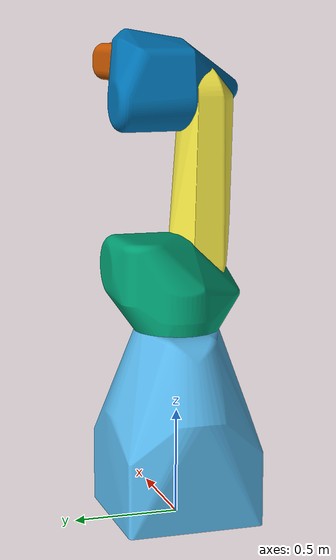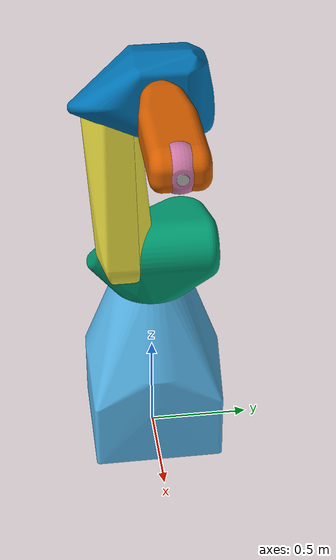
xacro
<?xml version="1.0"?>
<robot xmlns:xacro="http://www.ros.org/wiki/xacro" name="cr_35ia">
  <xacro:arg name="prefix" default=""/>
  <xacro:include filename="$(find fanuc_robot_descriptions)/urdf/cr_35ia_macro.xacro"/>
  <link name="world"/>
  <xacro:cr_35ia prefix="$(arg prefix)" parent="world">
    <origin xyz="0 0 0" rpy="0 0 0"/>
  </xacro:cr_35ia>
</robot>

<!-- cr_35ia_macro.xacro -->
<robot xmlns:xacro="http://www.ros.org/wiki/xacro">

  <!-- Fanuc CR-35iA - generated from RoboDK .robot -->
  <xacro:macro name="cr_35ia" params="prefix parent *origin">

    <material name="${prefix}cr_35ia_grey"><color rgba="0.85 0.85 0.85 1.0"/></material>

    <joint name="${prefix}base_joint" type="fixed">
      <xacro:insert_block name="origin"/>
      <parent link="${parent}"/>
      <child link="${prefix}base_link"/>
    </joint>

    <link name="${prefix}base_link">
      <visual>
        <origin xyz="0 0 0" rpy="0 0 0"/>
        <geometry>
          <mesh filename="package://fanuc_robot_descriptions/meshes/cr_35ia/visual/base_link.dae" scale="0.001 0.001 0.001"/>
        </geometry>
      </visual>
      <collision>
        <origin xyz="0 0 0" rpy="0 0 0"/>
        <geometry>
          <mesh filename="package://fanuc_robot_descriptions/meshes/cr_35ia/collision/base_link.stl" scale="0.001 0.001 0.001"/>
        </geometry>
      </collision>
    </link>

    <link name="${prefix}link_1">
      <visual>
        <origin xyz="0 0 0" rpy="0 0 0"/>
        <geometry>
          <mesh filename="package://fanuc_robot_descriptions/meshes/cr_35ia/visual/link_1.dae" scale="0.001 0.001 0.001"/>
        </geometry>
      </visual>
      <collision>
        <origin xyz="0 0 0" rpy="0 0 0"/>
        <geometry>
          <mesh filename="package://fanuc_robot_descriptions/meshes/cr_35ia/collision/link_1.stl" scale="0.001 0.001 0.001"/>
        </geometry>
      </collision>
    </link>

    <link name="${prefix}link_2">
      <visual>
        <origin xyz="0 0 0" rpy="0 0 0"/>
        <geometry>
          <mesh filename="package://fanuc_robot_descriptions/meshes/cr_35ia/visual/link_2.dae" scale="0.001 0.001 0.001"/>
        </geometry>
      </visual>
      <collision>
        <origin xyz="0 0 0" rpy="0 0 0"/>
        <geometry>
          <mesh filename="package://fanuc_robot_descriptions/meshes/cr_35ia/collision/link_2.stl" scale="0.001 0.001 0.001"/>
        </geometry>
      </collision>
    </link>

    <link name="${prefix}link_3">
      <visual>
        <origin xyz="0 0 0" rpy="0 0 0"/>
        <geometry>
          <mesh filename="package://fanuc_robot_descriptions/meshes/cr_35ia/visual/link_3.dae" scale="0.001 0.001 0.001"/>
        </geometry>
      </visual>
      <collision>
        <origin xyz="0 0 0" rpy="0 0 0"/>
        <geometry>
          <mesh filename="package://fanuc_robot_descriptions/meshes/cr_35ia/collision/link_3.stl" scale="0.001 0.001 0.001"/>
        </geometry>
      </collision>
    </link>

    <link name="${prefix}link_4">
      <visual>
        <origin xyz="0 0 0" rpy="0 0 0"/>
        <geometry>
          <mesh filename="package://fanuc_robot_descriptions/meshes/cr_35ia/visual/link_4.dae" scale="0.001 0.001 0.001"/>
        </geometry>
      </visual>
      <collision>
        <origin xyz="0 0 0" rpy="0 0 0"/>
        <geometry>
          <mesh filename="package://fanuc_robot_descriptions/meshes/cr_35ia/collision/link_4.stl" scale="0.001 0.001 0.001"/>
        </geometry>
      </collision>
    </link>

    <link name="${prefix}link_5">
      <visual>
        <origin xyz="0 0 0" rpy="0 0 0"/>
        <geometry>
          <mesh filename="package://fanuc_robot_descriptions/meshes/cr_35ia/visual/link_5.dae" scale="0.001 0.001 0.001"/>
        </geometry>
      </visual>
      <collision>
        <origin xyz="0 0 0" rpy="0 0 0"/>
        <geometry>
          <mesh filename="package://fanuc_robot_descriptions/meshes/cr_35ia/collision/link_5.stl" scale="0.001 0.001 0.001"/>
        </geometry>
      </collision>
    </link>

    <link name="${prefix}link_6">
      <visual>
        <origin xyz="0 0 0" rpy="0 0 0"/>
        <geometry>
          <mesh filename="package://fanuc_robot_descriptions/meshes/cr_35ia/visual/link_6.dae" scale="0.001 0.001 0.001"/>
        </geometry>
      </visual>
      <collision>
        <origin xyz="0 0 0" rpy="0 0 0"/>
        <geometry>
          <mesh filename="package://fanuc_robot_descriptions/meshes/cr_35ia/collision/link_6.stl" scale="0.001 0.001 0.001"/>
        </geometry>
      </collision>
    </link>

    <joint name="${prefix}joint_1" type="revolute">
      <parent link="${prefix}base_link"/>
      <child link="${prefix}link_1"/>
      <origin xyz="0 0 1.18" rpy="0 -0 0"/>
      <axis xyz="0 0 1"/>
      <limit lower="-3.2288591" upper="3.2288591" effort="100.0" velocity="3.1416"/>
    </joint>

    <joint name="${prefix}joint_2" type="revolute">
      <parent link="${prefix}link_1"/>
      <child link="${prefix}link_2"/>
      <origin xyz="0.15 0 0" rpy="-1.5707963 -1.5707963 0"/>
      <axis xyz="0 0 1"/>
      <limit lower="-1.0471976" upper="2.443461" effort="100.0" velocity="3.1416"/>
    </joint>

    <joint name="${prefix}joint_3" type="revolute">
      <parent link="${prefix}link_2"/>
      <child link="${prefix}link_3"/>
      <origin xyz="0.79 0 0" rpy="0 -0 0"/>
      <axis xyz="0 0 1"/>
      <limit lower="-1.2217305" upper="2.9670597" effort="100.0" velocity="3.1416"/>
    </joint>

    <joint name="${prefix}joint_4" type="revolute">
      <parent link="${prefix}link_3"/>
      <child link="${prefix}link_4"/>
      <origin xyz="0.15 0.86 5.2659812e-17" rpy="-1.5707963 -0 0"/>
      <axis xyz="0 0 1"/>
      <limit lower="-3.4906585" upper="3.4906585" effort="100.0" velocity="3.1416"/>
    </joint>

    <joint name="${prefix}joint_5" type="revolute">
      <parent link="${prefix}link_4"/>
      <child link="${prefix}link_5"/>
      <origin xyz="0 0 0" rpy="1.5707963 -0 0"/>
      <axis xyz="0 0 1"/>
      <limit lower="-1.9198622" upper="1.9198622" effort="100.0" velocity="3.1416"/>
    </joint>

    <joint name="${prefix}joint_6" type="revolute">
      <parent link="${prefix}link_5"/>
      <child link="${prefix}link_6"/>
      <origin xyz="0 0.1 6.123234e-18" rpy="-1.5707963 -0 0"/>
      <axis xyz="0 0 1"/>
      <limit lower="-7.8539816" upper="7.8539816" effort="100.0" velocity="3.1416"/>
    </joint>

    <link name="${prefix}flange"/>
    <joint name="${prefix}link_6-flange" type="fixed">
      <parent link="${prefix}link_6"/>
      <child link="${prefix}flange"/>
      <origin xyz="0 0 0" rpy="0 0 0"/>
    </joint>
    <link name="${prefix}tool0"/>
    <joint name="${prefix}flange-tool0" type="fixed">
      <parent link="${prefix}flange"/>
      <child link="${prefix}tool0"/>
      <origin xyz="0 0 0" rpy="0 0 0"/>
    </joint>

  </xacro:macro>
</robot>
